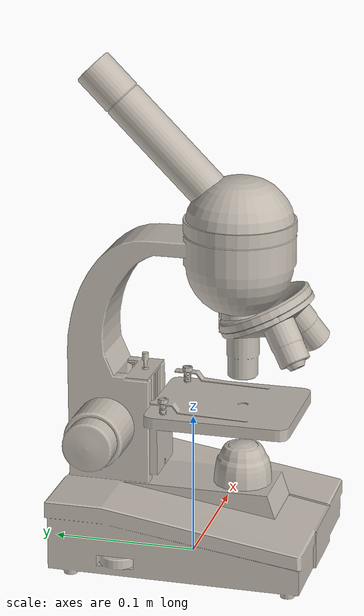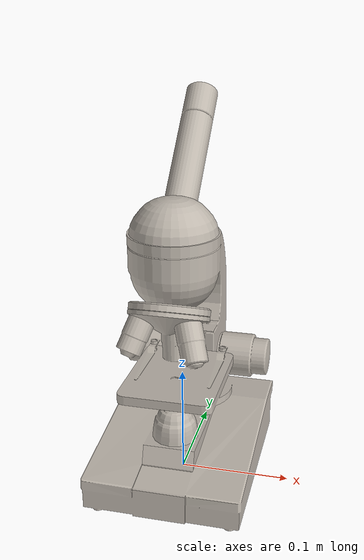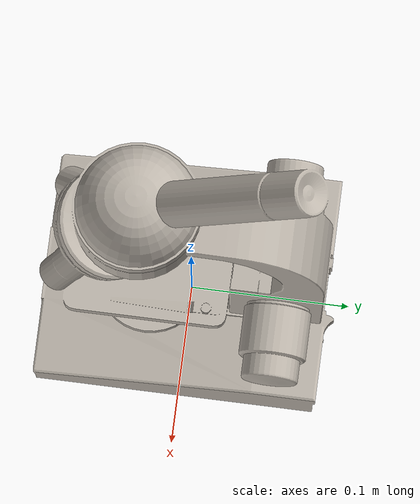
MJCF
<?xml version="1.0" ?>
<mujoco model="9562226299a045bab13c3d66f8593208">
  <asset>
    <texture type="2d" name="Microscope" file="Microscope.png"/>
    <material name="Microscope" texture="Microscope" specular="0.4000000000000001" shininess="0.001"/>
    <mesh file="9562226299a045bab13c3d66f8593208/9562226299a045bab13c3d66f8593208.obj" scale="0.010693594632202175 0.010693594632202175 0.010693594632202175"/>
    <mesh file="9562226299a045bab13c3d66f8593208/9562226299a045bab13c3d66f8593208_collision_0.obj" scale="0.010693594632202175 0.010693594632202175 0.010693594632202175"/>
    <mesh file="9562226299a045bab13c3d66f8593208/9562226299a045bab13c3d66f8593208_collision_1.obj" scale="0.010693594632202175 0.010693594632202175 0.010693594632202175"/>
    <mesh file="9562226299a045bab13c3d66f8593208/9562226299a045bab13c3d66f8593208_collision_2.obj" scale="0.010693594632202175 0.010693594632202175 0.010693594632202175"/>
    <mesh file="9562226299a045bab13c3d66f8593208/9562226299a045bab13c3d66f8593208_collision_3.obj" scale="0.010693594632202175 0.010693594632202175 0.010693594632202175"/>
    <mesh file="9562226299a045bab13c3d66f8593208/9562226299a045bab13c3d66f8593208_collision_4.obj" scale="0.010693594632202175 0.010693594632202175 0.010693594632202175"/>
    <mesh file="9562226299a045bab13c3d66f8593208/9562226299a045bab13c3d66f8593208_collision_5.obj" scale="0.010693594632202175 0.010693594632202175 0.010693594632202175"/>
    <mesh file="9562226299a045bab13c3d66f8593208/9562226299a045bab13c3d66f8593208_collision_6.obj" scale="0.010693594632202175 0.010693594632202175 0.010693594632202175"/>
    <mesh file="9562226299a045bab13c3d66f8593208/9562226299a045bab13c3d66f8593208_collision_7.obj" scale="0.010693594632202175 0.010693594632202175 0.010693594632202175"/>
    <mesh file="9562226299a045bab13c3d66f8593208/9562226299a045bab13c3d66f8593208_collision_8.obj" scale="0.010693594632202175 0.010693594632202175 0.010693594632202175"/>
    <mesh file="9562226299a045bab13c3d66f8593208/9562226299a045bab13c3d66f8593208_collision_9.obj" scale="0.010693594632202175 0.010693594632202175 0.010693594632202175"/>
    <mesh file="9562226299a045bab13c3d66f8593208/9562226299a045bab13c3d66f8593208_collision_10.obj" scale="0.010693594632202175 0.010693594632202175 0.010693594632202175"/>
    <mesh file="9562226299a045bab13c3d66f8593208/9562226299a045bab13c3d66f8593208_collision_11.obj" scale="0.010693594632202175 0.010693594632202175 0.010693594632202175"/>
    <mesh file="9562226299a045bab13c3d66f8593208/9562226299a045bab13c3d66f8593208_collision_12.obj" scale="0.010693594632202175 0.010693594632202175 0.010693594632202175"/>
    <mesh file="9562226299a045bab13c3d66f8593208/9562226299a045bab13c3d66f8593208_collision_13.obj" scale="0.010693594632202175 0.010693594632202175 0.010693594632202175"/>
    <mesh file="9562226299a045bab13c3d66f8593208/9562226299a045bab13c3d66f8593208_collision_14.obj" scale="0.010693594632202175 0.010693594632202175 0.010693594632202175"/>
    <mesh file="9562226299a045bab13c3d66f8593208/9562226299a045bab13c3d66f8593208_collision_15.obj" scale="0.010693594632202175 0.010693594632202175 0.010693594632202175"/>
    <mesh file="9562226299a045bab13c3d66f8593208/9562226299a045bab13c3d66f8593208_collision_16.obj" scale="0.010693594632202175 0.010693594632202175 0.010693594632202175"/>
    <mesh file="9562226299a045bab13c3d66f8593208/9562226299a045bab13c3d66f8593208_collision_17.obj" scale="0.010693594632202175 0.010693594632202175 0.010693594632202175"/>
    <mesh file="9562226299a045bab13c3d66f8593208/9562226299a045bab13c3d66f8593208_collision_18.obj" scale="0.010693594632202175 0.010693594632202175 0.010693594632202175"/>
    <mesh file="9562226299a045bab13c3d66f8593208/9562226299a045bab13c3d66f8593208_collision_19.obj" scale="0.010693594632202175 0.010693594632202175 0.010693594632202175"/>
    <mesh file="9562226299a045bab13c3d66f8593208/9562226299a045bab13c3d66f8593208_collision_20.obj" scale="0.010693594632202175 0.010693594632202175 0.010693594632202175"/>
    <mesh file="9562226299a045bab13c3d66f8593208/9562226299a045bab13c3d66f8593208_collision_21.obj" scale="0.010693594632202175 0.010693594632202175 0.010693594632202175"/>
    <mesh file="9562226299a045bab13c3d66f8593208/9562226299a045bab13c3d66f8593208_collision_22.obj" scale="0.010693594632202175 0.010693594632202175 0.010693594632202175"/>
    <mesh file="9562226299a045bab13c3d66f8593208/9562226299a045bab13c3d66f8593208_collision_23.obj" scale="0.010693594632202175 0.010693594632202175 0.010693594632202175"/>
    <mesh file="9562226299a045bab13c3d66f8593208/9562226299a045bab13c3d66f8593208_collision_24.obj" scale="0.010693594632202175 0.010693594632202175 0.010693594632202175"/>
    <mesh file="9562226299a045bab13c3d66f8593208/9562226299a045bab13c3d66f8593208_collision_25.obj" scale="0.010693594632202175 0.010693594632202175 0.010693594632202175"/>
    <mesh file="9562226299a045bab13c3d66f8593208/9562226299a045bab13c3d66f8593208_collision_26.obj" scale="0.010693594632202175 0.010693594632202175 0.010693594632202175"/>
    <mesh file="9562226299a045bab13c3d66f8593208/9562226299a045bab13c3d66f8593208_collision_27.obj" scale="0.010693594632202175 0.010693594632202175 0.010693594632202175"/>
    <mesh file="9562226299a045bab13c3d66f8593208/9562226299a045bab13c3d66f8593208_collision_28.obj" scale="0.010693594632202175 0.010693594632202175 0.010693594632202175"/>
    <mesh file="9562226299a045bab13c3d66f8593208/9562226299a045bab13c3d66f8593208_collision_29.obj" scale="0.010693594632202175 0.010693594632202175 0.010693594632202175"/>
    <mesh file="9562226299a045bab13c3d66f8593208/9562226299a045bab13c3d66f8593208_collision_30.obj" scale="0.010693594632202175 0.010693594632202175 0.010693594632202175"/>
  </asset>
  <worldbody>
    <body name="9562226299a045bab13c3d66f8593208">
      <inertial pos="0 0 0.1750" mass="0.02" diaginertia="0.000260 0.000239 0.000091"/>
      <geom material="Microscope" mesh="9562226299a045bab13c3d66f8593208" class="visual"/>
      <geom mesh="9562226299a045bab13c3d66f8593208_collision_0" rgba="0.526124767354128 0.0013282385758117687 0.6795377508973349 1" class="collision"/>
      <geom mesh="9562226299a045bab13c3d66f8593208_collision_1" rgba="0.12885527317710188 0.845935298596696 0.8497719917991524 1" class="collision"/>
      <geom mesh="9562226299a045bab13c3d66f8593208_collision_2" rgba="0.4629774320447382 0.9711522031602462 0.057565234031700996 1" class="collision"/>
      <geom mesh="9562226299a045bab13c3d66f8593208_collision_3" rgba="0.2597930126591309 0.2580384628695569 0.5821509054631272 1" class="collision"/>
      <geom mesh="9562226299a045bab13c3d66f8593208_collision_4" rgba="0.9520207153959729 0.34556246172396154 0.5426129534022264 1" class="collision"/>
      <geom mesh="9562226299a045bab13c3d66f8593208_collision_5" rgba="0.5648470365225526 0.673633560302884 0.8402003270832087 1" class="collision"/>
      <geom mesh="9562226299a045bab13c3d66f8593208_collision_6" rgba="0.010125614947310013 0.419232822375884 0.5904378909137207 1" class="collision"/>
      <geom mesh="9562226299a045bab13c3d66f8593208_collision_7" rgba="0.8014935785307433 0.022985959682830348 0.12766660492438575 1" class="collision"/>
      <geom mesh="9562226299a045bab13c3d66f8593208_collision_8" rgba="0.9304029806401968 0.7378152428383437 0.25857257663630695 1" class="collision"/>
      <geom mesh="9562226299a045bab13c3d66f8593208_collision_9" rgba="0.004907645978634689 0.636346076785412 0.34813090264481816 1" class="collision"/>
      <geom mesh="9562226299a045bab13c3d66f8593208_collision_10" rgba="0.9617395885369789 0.7391708800636276 0.2775055075360867 1" class="collision"/>
      <geom mesh="9562226299a045bab13c3d66f8593208_collision_11" rgba="0.7481522225908102 0.2696878457681706 0.43201114721106426 1" class="collision"/>
      <geom mesh="9562226299a045bab13c3d66f8593208_collision_12" rgba="0.8148124700539686 0.5513663862706352 0.9307908598114514 1" class="collision"/>
      <geom mesh="9562226299a045bab13c3d66f8593208_collision_13" rgba="0.18916562180101149 0.2851141348369207 0.613857211897321 1" class="collision"/>
      <geom mesh="9562226299a045bab13c3d66f8593208_collision_14" rgba="0.9497147871340254 0.18545556108069305 0.04543091348447981 1" class="collision"/>
      <geom mesh="9562226299a045bab13c3d66f8593208_collision_15" rgba="0.2986789320762996 0.2780839832027744 0.018824504591402946 1" class="collision"/>
      <geom mesh="9562226299a045bab13c3d66f8593208_collision_16" rgba="0.14185281405235028 0.8956167043809548 0.11553481749263217 1" class="collision"/>
      <geom mesh="9562226299a045bab13c3d66f8593208_collision_17" rgba="0.5582098445960544 0.6281176679687972 0.7980765191819819 1" class="collision"/>
      <geom mesh="9562226299a045bab13c3d66f8593208_collision_18" rgba="0.7183439117491713 0.3774584174474982 0.9216603773339751 1" class="collision"/>
      <geom mesh="9562226299a045bab13c3d66f8593208_collision_19" rgba="0.519907118871322 0.17007302179796113 0.8155963446471183 1" class="collision"/>
      <geom mesh="9562226299a045bab13c3d66f8593208_collision_20" rgba="0.4332199955160537 0.6543095592064665 0.1315784244909607 1" class="collision"/>
      <geom mesh="9562226299a045bab13c3d66f8593208_collision_21" rgba="0.4162795977695837 0.36627305750475336 0.9136600400475334 1" class="collision"/>
      <geom mesh="9562226299a045bab13c3d66f8593208_collision_22" rgba="0.2544969008152559 0.32813488864364315 0.2492172646914943 1" class="collision"/>
      <geom mesh="9562226299a045bab13c3d66f8593208_collision_23" rgba="0.5437923820215651 0.09370364575986856 0.03780415946174809 1" class="collision"/>
      <geom mesh="9562226299a045bab13c3d66f8593208_collision_24" rgba="0.04313312628889243 0.7440601636571221 0.24483982585499042 1" class="collision"/>
      <geom mesh="9562226299a045bab13c3d66f8593208_collision_25" rgba="0.6454633188974411 0.598800493141995 0.44349330995605607 1" class="collision"/>
      <geom mesh="9562226299a045bab13c3d66f8593208_collision_26" rgba="0.8250969525324796 0.8006074324941824 0.7432319859415576 1" class="collision"/>
      <geom mesh="9562226299a045bab13c3d66f8593208_collision_27" rgba="0.27055742477971767 0.5048218172092286 0.01886896591924414 1" class="collision"/>
      <geom mesh="9562226299a045bab13c3d66f8593208_collision_28" rgba="0.1132512818875504 0.32334587394904124 0.9418009608218963 1" class="collision"/>
      <geom mesh="9562226299a045bab13c3d66f8593208_collision_29" rgba="0.38247774005800206 0.6083076718470746 0.2776313663860748 1" class="collision"/>
      <geom mesh="9562226299a045bab13c3d66f8593208_collision_30" rgba="0.3253072188428383 0.6625500318639392 0.5535873323527536 1" class="collision"/>
      <site class="grasppoint" pos="0 0 0.2800"/>
      <site class="grasppoint" pos="0 0 0.3062"/>
      <site class="grasppoint" pos="0 0 0.3325"/>
    </body>
  </worldbody>
  <compiler boundmass="0.015" boundinertia="1e-05" angle="radian"/>
  <default>
    <default class="visual">
      <geom group="2" type="mesh" contype="0" conaffinity="0" density="50"/>
    </default>
    <default class="collision">
      <geom group="3" type="mesh" density="50" friction="1.5 0.1 0.1" solimp="0.9 0.95 0.001" solref="0.02 1"/>
    </default>
    <default class="grasppoint">
      <site type="sphere" size="0.005" group="4" rgba="0 0 1 1"/>
    </default>
  </default>
</mujoco>
